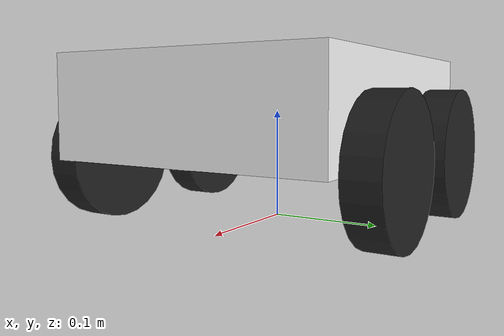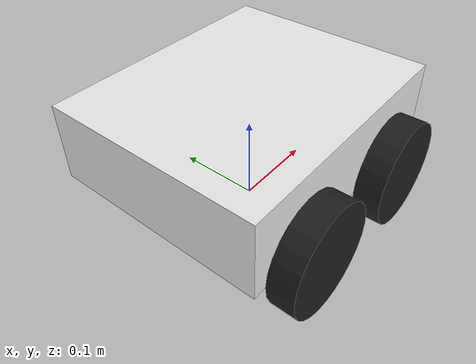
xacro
<?xml version="1.0"?>
<robot xmlns:xacro="http://www.ros.org/wiki/xacro">

   <xacro:property name="base_length" value="0.3" />
   <xacro:property name="base_width" value="0.25" />
   <xacro:property name="base_height" value="0.09" />
   <xacro:property name="wheel_radius" value="0.06" />
   <xacro:property name="wheel_length" value="0.03" />

   <link name="base_footprint">
   </link>

   <link name="base_link">
       <visual>
           <geometry>
               <box size="${base_length} ${base_width} ${base_height}" />            </geometry>
           <origin xyz="0 0 ${base_height / 2.0 }" rpy="0 0 0" />
           <material name="white" />
       </visual>
       <collision>
           <geometry>
               <box size="${base_length} ${base_width} ${base_height}" />
           </geometry>
           <origin xyz="0 0 ${base_height / 2.0}" rpy="0 0 0" />
       </collision>
       <xacro:box_inertia m="6.0" l="${base_length}" w="${base_width}" h="${base_height}"
                          xyz="0 0 ${base_height / 2.0}" rpy="0 0 0"/>
   </link>

   <xacro:macro name="wheel_link" params="prefix direct">
       <link name="${prefix}_wheel_${direct}_link">
           <visual>
               <geometry>
                   <cylinder radius="${wheel_radius}" length="${wheel_length}"/>
               </geometry>
               <origin xyz="0 0 0" rpy="${pi / 2.0} 0 0" />
               <material name="black"/>
           </visual>
           <collision>
               <geometry>
                   <cylinder radius="${wheel_radius}" length="${wheel_length}"/>
               </geometry>
               <origin xyz="0 0 0" rpy="${pi / 2.0} 0 0" />
           </collision>
           <xacro:cylinder_inertia m="0.5" r="${wheel_radius}" h="${wheel_length}"
                                   xyz="0 0 0" rpy="${pi / 2.0} 0 0"/>
       </link>
   </xacro:macro>

   <xacro:wheel_link prefix="right" direct="back" />
   <xacro:wheel_link prefix="right" direct="front" />
   <xacro:wheel_link prefix="left" direct="back" />
   <xacro:wheel_link prefix="left" direct="front" />

   <joint name="base_joint" type="fixed">
       <parent link="base_footprint"/>
       <child link="base_link"/>
       <origin xyz="0 0 ${wheel_radius}" rpy="0 0 0"/>
   </joint>

   <joint name="base_right_wheel_back_joint" type="continuous">
        <parent link="base_link" />
        <child link="right_wheel_back_link" />
        <origin xyz="${-base_length / 4.0} ${-(base_width + wheel_length) / 2.0} 0" rpy="0 0 0" />
        <limit effort="10" velocity="10"/>
        <axis xyz="0 1 0" />
   </joint>

   <joint name="base_right_wheel_front_joint" type="fixed">
        <parent link="base_link" />
        <child link="right_wheel_front_link" />
        <origin xyz="${base_length / 4.0} ${-(base_width + wheel_length) / 2.0}  0" rpy="0 0 0" />
        <limit effort="0.0" velocity="0.0"/>
        <dynamics damping="0.0" friction="0.0"/>
   </joint>

   <joint name="base_left_wheel_back_joint" type="continuous">
        <parent link="base_link" />
        <child link="left_wheel_back_link" />
        <origin xyz="${-base_length / 4.0} ${(base_width + wheel_length) / 2.0}  0" rpy="0 0 0" />
        <limit effort="10" velocity="10"/>
        <axis xyz="0 1 0" />
   </joint>

   <joint name="base_left_wheel_front_joint" type="fixed">
        <parent link="base_link" />
        <child link="left_wheel_front_link" />
        <origin xyz="${base_length / 4.0} ${(base_width + wheel_length) / 2.0}  0" rpy="0 0 0" />
        <limit effort="0.0" velocity="0.0"/>
        <dynamics damping="0.0" friction="0.0"/>
   </joint>

</robot>
